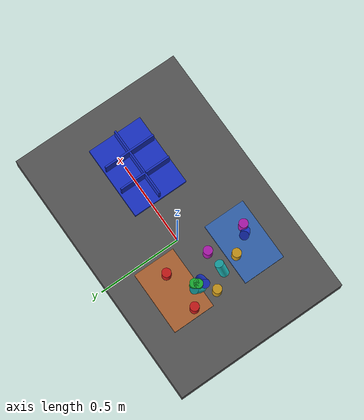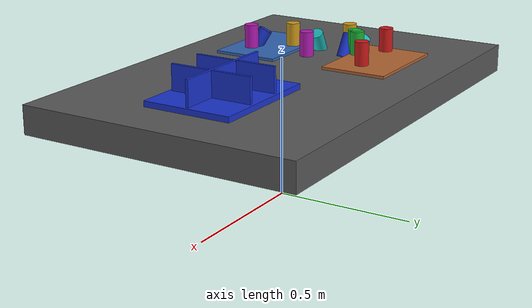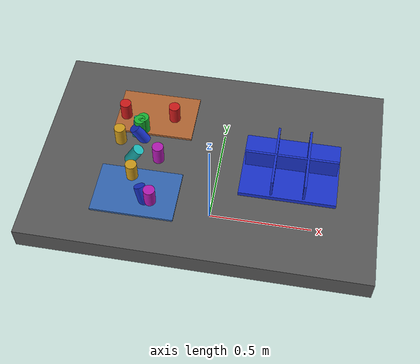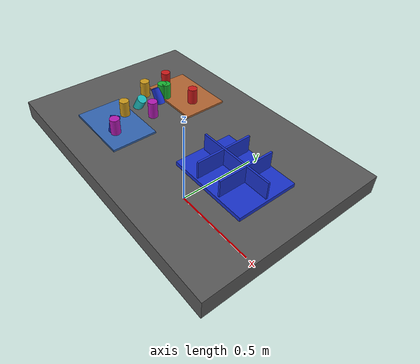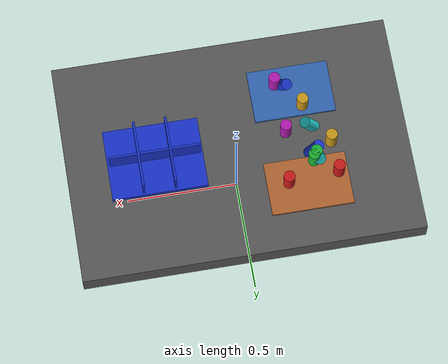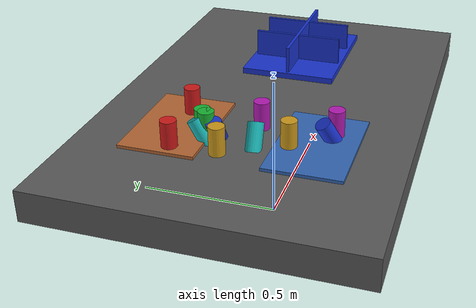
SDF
<?xml version="1.0" ?>
<sdf version="1.9">
  <!-- Standalone M1B scene.  The controller-backed Panda is spawned by the
       existing launch path; this file never alters the frozen M1A cube world. -->
  <world name="industrial_cylinder_v1">
    <physics name="bullet" type="bullet"><max_step_size>0.001</max_step_size><real_time_factor>1.0</real_time_factor></physics>
    <plugin name="gz::sim::systems::Physics" filename="gz-sim-physics-system"><engine><filename>gz-physics-bullet-featherstone-plugin</filename></engine></plugin>
    <plugin name="gz::sim::systems::UserCommands" filename="gz-sim-user-commands-system"/>
    <plugin name="gz::sim::systems::SceneBroadcaster" filename="gz-sim-scene-broadcaster-system"/>
    <plugin name="gz::sim::systems::Sensors" filename="gz-sim-sensors-system"><render_engine>ogre2</render_engine></plugin>
    <gravity>0 0 -9.81</gravity>
    <light type="directional" name="industrial_light"><pose>0 0 5 0 0 0</pose><direction>-0.3 0.2 -0.9</direction><diffuse>0.9 0.9 0.9 1</diffuse></light>
    <model name="industrial_work_table"><static>true</static><link name="link"><pose>0 0 0.4 0 0 0</pose><collision name="collision"><geometry><box><size>1.5 1.0 0.1</size></box></geometry></collision><visual name="visual"><geometry><box><size>1.5 1.0 0.1</size></box></geometry><material><diffuse>0.35 0.35 0.35 1</diffuse></material></visual></link></model>
    <model name="camera_fixture"><static>true</static><link name="camera_rgbd"><pose>-0.80 -0.80 1.40 0 0.77 0.93</pose><sensor name="front_rgbd" type="rgbd_camera"><always_on>1</always_on><update_rate>15</update_rate><topic>/xh/camera/rgbd</topic><camera><horizontal_fov>1.047</horizontal_fov><image><width>640</width><height>480</height><format>R8G8B8</format></image><clip><near>0.1</near><far>4.0</far></clip></camera></sensor></link></model>
    <model name="incoming_zone_a"><static>true</static><link name="link"><pose>-0.28 -0.22 0.455 0 0 0</pose><visual name="visual"><geometry><box><size>0.36 0.24 0.01</size></box></geometry><material><diffuse>0.2 0.4 0.7 1</diffuse></material></visual></link></model>
    <model name="incoming_zone_b"><static>true</static><link name="link"><pose>-0.28 0.22 0.455 0 0 0</pose><visual name="visual"><geometry><box><size>0.36 0.24 0.01</size></box></geometry><material><diffuse>0.7 0.4 0.2 1</diffuse></material></visual></link></model>
    <!-- M1B_RANDOM_PARTS_BEGIN -->
    <model name="cylinder_01"><pose>-0.4187 0.1897 0.5000 0.0000 0.0000 -2.0481</pose><link name="link"><inertial><mass>0.06</mass></inertial><collision name="collision"><geometry><cylinder><radius>0.025</radius><length>0.09</length></cylinder></geometry></collision><visual name="visual"><geometry><cylinder><radius>0.025</radius><length>0.09</length></cylinder></geometry><material><diffuse>0.800 0.100 0.100 1</diffuse><specular>0.15 0.15 0.15 1</specular></material></visual></link></model>
    <model name="cylinder_02"><pose>-0.3210 0.1220 0.5000 3.1416 0.0000 -2.0274</pose><link name="link"><inertial><mass>0.06</mass></inertial><collision name="collision"><geometry><cylinder><radius>0.025</radius><length>0.09</length></cylinder></geometry></collision><visual name="visual"><geometry><cylinder><radius>0.025</radius><length>0.09</length></cylinder></geometry><material><diffuse>0.100 0.700 0.200 1</diffuse><specular>0.15 0.15 0.15 1</specular></material></visual></link></model>
    <model name="cylinder_03"><pose>-0.2478 -0.2481 0.4800 0.4500 -0.3000 -1.9081</pose><link name="link"><inertial><mass>0.06</mass></inertial><collision name="collision"><geometry><cylinder><radius>0.025</radius><length>0.09</length></cylinder></geometry></collision><visual name="visual"><geometry><cylinder><radius>0.025</radius><length>0.09</length></cylinder></geometry><material><diffuse>0.100 0.200 0.800 1</diffuse><specular>0.15 0.15 0.15 1</specular></material></visual></link></model>
    <model name="cylinder_04"><pose>-0.4113 0.0440 0.5000 0.0000 0.0000 1.4572</pose><link name="link"><inertial><mass>0.06</mass></inertial><collision name="collision"><geometry><cylinder><radius>0.025</radius><length>0.09</length></cylinder></geometry></collision><visual name="visual"><geometry><cylinder><radius>0.025</radius><length>0.09</length></cylinder></geometry><material><diffuse>0.800 0.600 0.100 1</diffuse><specular>0.15 0.15 0.15 1</specular></material></visual></link></model>
    <model name="cylinder_05"><pose>-0.2123 -0.2609 0.5000 3.1416 0.0000 2.0828</pose><link name="link"><inertial><mass>0.06</mass></inertial><collision name="collision"><geometry><cylinder><radius>0.025</radius><length>0.09</length></cylinder></geometry></collision><visual name="visual"><geometry><cylinder><radius>0.025</radius><length>0.09</length></cylinder></geometry><material><diffuse>0.700 0.100 0.700 1</diffuse><specular>0.15 0.15 0.15 1</specular></material></visual></link></model>
    <model name="cylinder_06"><pose>-0.3455 0.1161 0.4800 0.4500 -0.3000 -2.6962</pose><link name="link"><inertial><mass>0.06</mass></inertial><collision name="collision"><geometry><cylinder><radius>0.025</radius><length>0.09</length></cylinder></geometry></collision><visual name="visual"><geometry><cylinder><radius>0.025</radius><length>0.09</length></cylinder></geometry><material><diffuse>0.100 0.700 0.700 1</diffuse><specular>0.15 0.15 0.15 1</specular></material></visual></link></model>
    <model name="cylinder_07"><pose>-0.1960 0.2065 0.5000 0.0000 0.0000 -2.7771</pose><link name="link"><inertial><mass>0.06</mass></inertial><collision name="collision"><geometry><cylinder><radius>0.025</radius><length>0.09</length></cylinder></geometry></collision><visual name="visual"><geometry><cylinder><radius>0.025</radius><length>0.09</length></cylinder></geometry><material><diffuse>0.800 0.100 0.100 1</diffuse><specular>0.15 0.15 0.15 1</specular></material></visual></link></model>
    <model name="cylinder_08"><pose>-0.3335 0.1063 0.5000 3.1416 0.0000 -0.4651</pose><link name="link"><inertial><mass>0.06</mass></inertial><collision name="collision"><geometry><cylinder><radius>0.025</radius><length>0.09</length></cylinder></geometry></collision><visual name="visual"><geometry><cylinder><radius>0.025</radius><length>0.09</length></cylinder></geometry><material><diffuse>0.100 0.700 0.200 1</diffuse><specular>0.15 0.15 0.15 1</specular></material></visual></link></model>
    <model name="cylinder_09"><pose>-0.3286 0.0750 0.4800 0.4500 -0.3000 -1.0505</pose><link name="link"><inertial><mass>0.06</mass></inertial><collision name="collision"><geometry><cylinder><radius>0.025</radius><length>0.09</length></cylinder></geometry></collision><visual name="visual"><geometry><cylinder><radius>0.025</radius><length>0.09</length></cylinder></geometry><material><diffuse>0.100 0.200 0.800 1</diffuse><specular>0.15 0.15 0.15 1</specular></material></visual></link></model>
    <model name="cylinder_10"><pose>-0.3167 -0.1439 0.5000 0.0000 0.0000 -3.0703</pose><link name="link"><inertial><mass>0.06</mass></inertial><collision name="collision"><geometry><cylinder><radius>0.025</radius><length>0.09</length></cylinder></geometry></collision><visual name="visual"><geometry><cylinder><radius>0.025</radius><length>0.09</length></cylinder></geometry><material><diffuse>0.800 0.600 0.100 1</diffuse><specular>0.15 0.15 0.15 1</specular></material></visual></link></model>
    <model name="cylinder_11"><pose>-0.2231 -0.0316 0.5000 3.1416 0.0000 -0.2740</pose><link name="link"><inertial><mass>0.06</mass></inertial><collision name="collision"><geometry><cylinder><radius>0.025</radius><length>0.09</length></cylinder></geometry></collision><visual name="visual"><geometry><cylinder><radius>0.025</radius><length>0.09</length></cylinder></geometry><material><diffuse>0.700 0.100 0.700 1</diffuse><specular>0.15 0.15 0.15 1</specular></material></visual></link></model>
    <model name="cylinder_12"><pose>-0.3307 -0.0431 0.4800 0.4500 -0.3000 2.2180</pose><link name="link"><inertial><mass>0.06</mass></inertial><collision name="collision"><geometry><cylinder><radius>0.025</radius><length>0.09</length></cylinder></geometry></collision><visual name="visual"><geometry><cylinder><radius>0.025</radius><length>0.09</length></cylinder></geometry><material><diffuse>0.100 0.700 0.700 1</diffuse><specular>0.15 0.15 0.15 1</specular></material></visual></link></model>
    <!-- M1B_RANDOM_PARTS_END -->
    <model name="blue_partition_bin"><static>true</static><pose>0.36 0 0.45 0 0 0</pose><link name="link"><collision name="floor"><pose>0 0 0.01 0 0 0</pose><geometry><box><size>0.42 0.32 0.02</size></box></geometry></collision><visual name="floor_visual"><pose>0 0 0.01 0 0 0</pose><geometry><box><size>0.42 0.32 0.02</size></box></geometry><material><diffuse>0.1 0.2 0.8 1</diffuse></material></visual><visual name="row_divider"><pose>0 0 0.06 0 0 0</pose><geometry><box><size>0.40 0.01 0.10</size></box></geometry><material><diffuse>0.1 0.2 0.8 1</diffuse></material></visual><visual name="col_divider_a"><pose>-0.07 0 0.06 0 0 0</pose><geometry><box><size>0.01 0.30 0.10</size></box></geometry><material><diffuse>0.1 0.2 0.8 1</diffuse></material></visual><visual name="col_divider_b"><pose>0.07 0 0.06 0 0 0</pose><geometry><box><size>0.01 0.30 0.10</size></box></geometry><material><diffuse>0.1 0.2 0.8 1</diffuse></material></visual></link></model>
    <!-- Reserved only: second table, bin transport corridor, stackable-bin
         collision volume, and second arm mounting namespace. -->
  </world>
</sdf>
